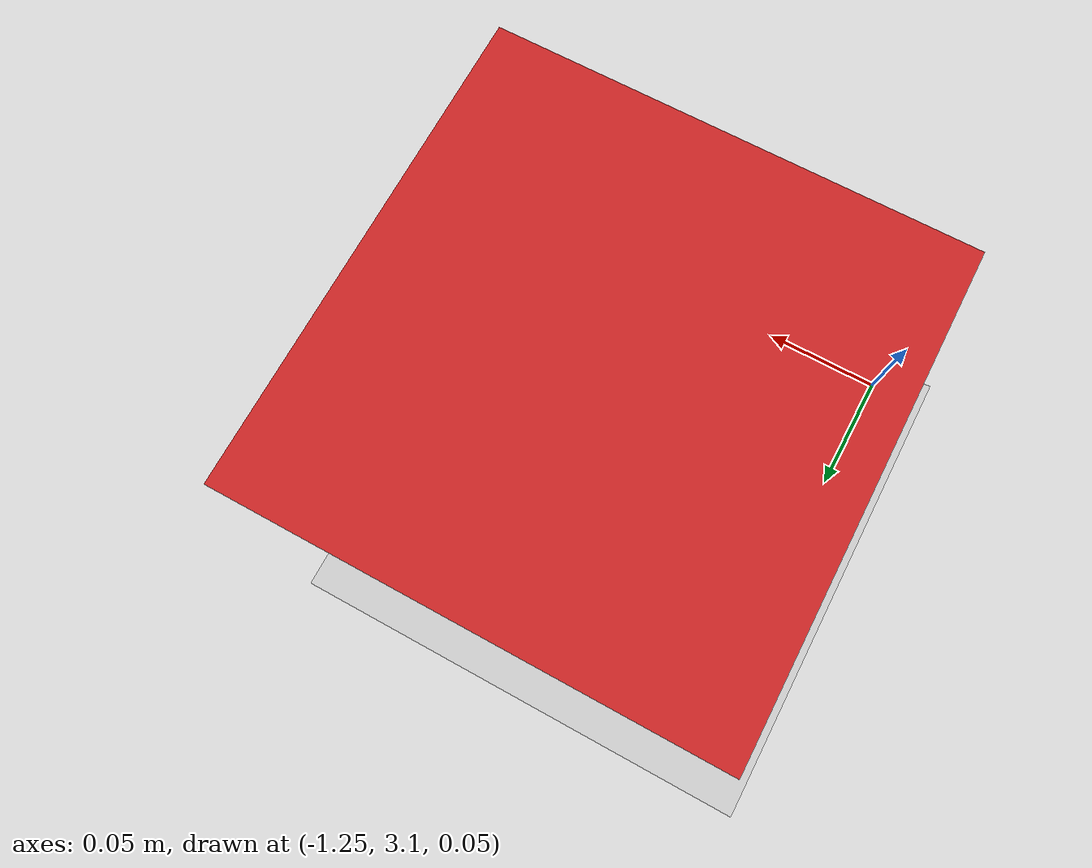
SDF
<sdf version="1.6">
 <world name="default">
  <model name="ground_plane">
   <static>1</static>
   <link name="link">
    <collision name="collision">
     <geometry><plane><normal>0 0 1</normal><size>100 100</size></plane></geometry>
     <surface><friction><ode><mu>100</mu><mu2>50</mu2></ode></friction></surface>
    </collision>
    <visual name="visual">
     <cast_shadows>0</cast_shadows>
     <geometry><plane><normal>0 0 1</normal><size>100 100</size></plane></geometry>
     <material>
      <script><uri>file://media/materials/scripts/gazebo.material</uri><name>Gazebo/Grey</name></script>
     </material>
    </visual>
   </link>
  </model>
  <model name="unit_box_0_1_0_0_0">
   <link name="link">
    <inertial>
     <mass>1</mass>
     <inertia>
      <ixx>0.166667</ixx>
      <ixy>0</ixy>
      <ixz>0</ixz>
      <iyy>0.166667</iyy>
      <iyz>0</iyz>
      <izz>0.166667</izz>
     </inertia>
    </inertial>
    <visual name="visual">
     <geometry><box><size>0.153356 0.153356 0.153356</size></box></geometry>
     <material>
      <script><name>Gazebo/Red</name><uri>file://media/materials/scripts/gazebo.material</uri></script>
      <ambient>1 0 0 1</ambient>
      <diffuse>1 0.1 0.1 1</diffuse>
      <specular>0.01 0.01 0.01 1</specular>
      <emissive>0 0 0 1</emissive>
      <shader type="vertex"><normal_map>__default__</normal_map></shader>
     </material>
    </visual>
    <collision name="collision">
     <geometry><box><size>0.153356 0.153356 0.153356</size></box></geometry>
     <surface>
      <friction>
       <ode><mu>1</mu><mu2>1</mu2><fdir1>0 0 0</fdir1><slip1>0</slip1><slip2>0</slip2></ode>
       <torsional>
        <coefficient>1</coefficient>
        <patch_radius>0</patch_radius>
        <surface_radius>0</surface_radius>
        <use_patch_radius>1</use_patch_radius>
        <ode><slip>0</slip></ode>
       </torsional>
      </friction>
      <bounce><restitution_coefficient>0</restitution_coefficient><threshold>1e+06</threshold></bounce>
      <contact>
       <collide_without_contact>0</collide_without_contact>
       <collide_without_contact_bitmask>1</collide_without_contact_bitmask>
       <collide_bitmask>1</collide_bitmask>
       <ode>
        <soft_cfm>0</soft_cfm>
        <soft_erp>0.2</soft_erp>
        <kp>1e+13</kp>
        <kd>1</kd>
        <max_vel>0.01</max_vel>
        <min_depth>0</min_depth>
       </ode>
       <bullet>
        <split_impulse>1</split_impulse>
        <split_impulse_penetration_threshold>-0.01</split_impulse_penetration_threshold>
        <soft_cfm>0</soft_cfm>
        <soft_erp>0.2</soft_erp>
        <kp>1e+13</kp>
        <kd>1</kd>
       </bullet>
      </contact>
     </surface>
    </collision>
   </link>
   <static>0</static>
   <pose>-1.16628 3.188 0.126678 3e-06 2e-06 2e-06</pose>
  </model>
 </world>
</sdf>
